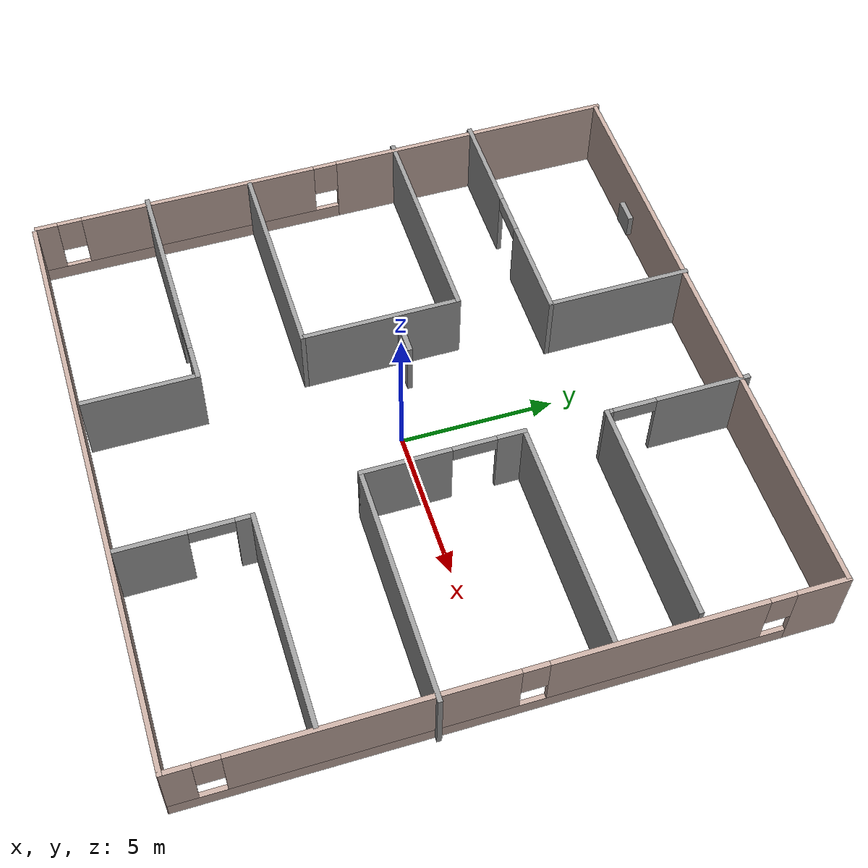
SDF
<?xml version='1.0'?>
<sdf version='1.7'>
  <model name='hosp'>
    <pose>-0.076232 0.37017 0 0 -0 0</pose>
    <link name='Door_1'>
      <collision name='Door_1_Collision'>
        <geometry>
          <box>
            <size>1.4 0.17 2</size>
          </box>
        </geometry>
        <pose>0 0 1 0 -0 0</pose>
      </collision>
      <visual name='Door_1_Visual'>
        <pose>0 0 1 0 -0 0</pose>
        <geometry>
          <box>
            <size>1.4 0.17 2</size>
          </box>
        </geometry>
        <material>
          <script>
            <uri>file://media/materials/scripts/gazebo.material</uri>
            <name>Gazebo/Grey</name>
          </script>
        </material>
      </visual>
      <pose>-2.54305 0.487142 0 0 -0 0</pose>
    </link>
    <link name='Wall_11'>
      <collision name='Wall_11_Collision'>
        <geometry>
          <box>
            <size>19.8 0.15 2.5</size>
          </box>
        </geometry>
        <pose>0 0 1.25 0 -0 0</pose>
      </collision>
      <visual name='Wall_11_Visual'>
        <pose>0 0 1.25 0 -0 0</pose>
        <geometry>
          <box>
            <size>19.8 0.15 2.5</size>
          </box>
        </geometry>
        <material>
          <script>
            <uri>file://media/materials/scripts/gazebo.material</uri>
            <name>Gazebo/Grey</name>
          </script>
          <ambient>0.760784 0.662745 0.627451 1</ambient>
        </material>
        <meta>
          <layer>0</layer>
        </meta>
      </visual>
      <pose>0.081232 -9.94295 0 0 -0 3.14159</pose>
    </link>
    <link name='Wall_13'>
      <pose>-9.90577 -0.026532 0 0 -0 -1.5708</pose>
      <visual name='Wall_13_Visual_0'>
        <pose>-5.13424 0 1.25 0 -0 0</pose>
        <geometry>
          <box>
            <size>9.53153 0.15 2.5</size>
          </box>
        </geometry>
        <material>
          <script>
            <uri>file://media/materials/scripts/gazebo.material</uri>
            <name>Gazebo/Grey</name>
          </script>
          <ambient>0.760784 0.662745 0.627451 1</ambient>
        </material>
        <meta>
          <layer>0</layer>
        </meta>
      </visual>
      <collision name='Wall_13_Collision_0'>
        <geometry>
          <box>
            <size>9.53153 0.15 2.5</size>
          </box>
        </geometry>
        <pose>-5.13424 0 1.25 0 -0 0</pose>
      </collision>
      <visual name='Wall_13_Visual_1'>
        <pose>4.76576 0 0.25 0 -0 0</pose>
        <geometry>
          <box>
            <size>10.2685 0.15 0.5</size>
          </box>
        </geometry>
        <material>
          <script>
            <uri>file://media/materials/scripts/gazebo.material</uri>
            <name>Gazebo/Grey</name>
          </script>
          <ambient>0.760784 0.662745 0.627451 1</ambient>
        </material>
        <meta>
          <layer>0</layer>
        </meta>
      </visual>
      <collision name='Wall_13_Collision_1'>
        <geometry>
          <box>
            <size>10.2685 0.15 0.5</size>
          </box>
        </geometry>
        <pose>4.76576 0 0.25 0 -0 0</pose>
      </collision>
      <visual name='Wall_13_Visual_2'>
        <pose>4.39198 0 1.5 0 -0 0</pose>
        <geometry>
          <box>
            <size>7.92091 0.15 2</size>
          </box>
        </geometry>
        <material>
          <script>
            <uri>file://media/materials/scripts/gazebo.material</uri>
            <name>Gazebo/Grey</name>
          </script>
          <ambient>0.760784 0.662745 0.627451 1</ambient>
        </material>
        <meta>
          <layer>0</layer>
        </meta>
      </visual>
      <collision name='Wall_13_Collision_2'>
        <geometry>
          <box>
            <size>7.92091 0.15 2</size>
          </box>
        </geometry>
        <pose>4.39198 0 1.5 0 -0 0</pose>
      </collision>
      <visual name='Wall_13_Visual_3'>
        <pose>9.52622 0 1.5 0 -0 0</pose>
        <geometry>
          <box>
            <size>0.747564 0.15 2</size>
          </box>
        </geometry>
        <material>
          <script>
            <uri>file://media/materials/scripts/gazebo.material</uri>
            <name>Gazebo/Grey</name>
          </script>
          <ambient>0.760784 0.662745 0.627451 1</ambient>
        </material>
        <meta>
          <layer>0</layer>
        </meta>
      </visual>
      <collision name='Wall_13_Collision_3'>
        <geometry>
          <box>
            <size>0.747564 0.15 2</size>
          </box>
        </geometry>
        <pose>9.52622 0 1.5 0 -0 0</pose>
      </collision>
      <visual name='Wall_13_Visual_4'>
        <pose>0.031529 0 1.9 0 -0 0</pose>
        <geometry>
          <box>
            <size>0.8 0.15 1.2</size>
          </box>
        </geometry>
        <material>
          <script>
            <uri>file://media/materials/scripts/gazebo.material</uri>
            <name>Gazebo/Grey</name>
          </script>
          <ambient>0.760784 0.662745 0.627451 1</ambient>
        </material>
        <meta>
          <layer>0</layer>
        </meta>
      </visual>
      <collision name='Wall_13_Collision_4'>
        <geometry>
          <box>
            <size>0.8 0.15 1.2</size>
          </box>
        </geometry>
        <pose>0.031529 0 1.9 0 -0 0</pose>
      </collision>
      <visual name='Wall_13_Visual_5'>
        <pose>8.75244 0 1.9 0 -0 0</pose>
        <geometry>
          <box>
            <size>0.8 0.15 1.2</size>
          </box>
        </geometry>
        <material>
          <script>
            <uri>file://media/materials/scripts/gazebo.material</uri>
            <name>Gazebo/Grey</name>
          </script>
          <ambient>0.760784 0.662745 0.627451 1</ambient>
        </material>
        <meta>
          <layer>0</layer>
        </meta>
      </visual>
      <collision name='Wall_13_Collision_5'>
        <geometry>
          <box>
            <size>0.8 0.15 1.2</size>
          </box>
        </geometry>
        <pose>8.75244 0 1.9 0 -0 0</pose>
      </collision>
    </link>
    <link name='Wall_17'>
      <pose>-6.00221 5.18021 0 0 -0 0</pose>
      <visual name='Wall_17_Visual_0'>
        <pose>-2.40324 0 1.25 0 -0 0</pose>
        <geometry>
          <box>
            <size>3.44353 0.15 2.5</size>
          </box>
        </geometry>
        <material>
          <script>
            <uri>file://media/materials/scripts/gazebo.material</uri>
            <name>Gazebo/Grey</name>
          </script>
          <ambient>1 1 1 1</ambient>
        </material>
        <meta>
          <layer>0</layer>
        </meta>
      </visual>
      <collision name='Wall_17_Collision_0'>
        <geometry>
          <box>
            <size>3.44353 0.15 2.5</size>
          </box>
        </geometry>
        <pose>-2.40324 0 1.25 0 -0 0</pose>
      </collision>
      <visual name='Wall_17_Visual_1'>
        <pose>2.42177 0 1.25 0 -0 0</pose>
        <geometry>
          <box>
            <size>3.40647 0.15 2.5</size>
          </box>
        </geometry>
        <material>
          <script>
            <uri>file://media/materials/scripts/gazebo.material</uri>
            <name>Gazebo/Grey</name>
          </script>
          <ambient>1 1 1 1</ambient>
        </material>
        <meta>
          <layer>0</layer>
        </meta>
      </visual>
      <collision name='Wall_17_Collision_1'>
        <geometry>
          <box>
            <size>3.40647 0.15 2.5</size>
          </box>
        </geometry>
        <pose>2.42177 0 1.25 0 -0 0</pose>
      </collision>
      <visual name='Wall_17_Visual_2'>
        <pose>0.018531 0 2.25 0 -0 0</pose>
        <geometry>
          <box>
            <size>1.4 0.15 0.5</size>
          </box>
        </geometry>
        <material>
          <script>
            <uri>file://media/materials/scripts/gazebo.material</uri>
            <name>Gazebo/Grey</name>
          </script>
          <ambient>1 1 1 1</ambient>
        </material>
        <meta>
          <layer>0</layer>
        </meta>
      </visual>
      <collision name='Wall_17_Collision_2'>
        <geometry>
          <box>
            <size>1.4 0.15 0.5</size>
          </box>
        </geometry>
        <pose>0.018531 0 2.25 0 -0 0</pose>
      </collision>
    </link>
    <link name='Wall_18'>
      <collision name='Wall_18_Collision'>
        <geometry>
          <box>
            <size>4.75 0.15 2.5</size>
          </box>
        </geometry>
        <pose>0 0 1.25 0 -0 0</pose>
      </collision>
      <visual name='Wall_18_Visual'>
        <pose>0 0 1.25 0 -0 0</pose>
        <geometry>
          <box>
            <size>4.75 0.15 2.5</size>
          </box>
        </geometry>
        <material>
          <script>
            <uri>file://media/materials/scripts/gazebo.material</uri>
            <name>Gazebo/Grey</name>
          </script>
          <ambient>1 1 1 1</ambient>
        </material>
        <meta>
          <layer>0</layer>
        </meta>
      </visual>
      <pose>-1.95222 7.48021 0 0 -0 1.5708</pose>
    </link>
    <link name='Wall_24'>
      <collision name='Wall_24_Collision'>
        <geometry>
          <box>
            <size>7.25 0.15 2.5</size>
          </box>
        </geometry>
        <pose>0 0 1.25 0 -0 0</pose>
      </collision>
      <visual name='Wall_24_Visual'>
        <pose>0 0 1.25 0 -0 0</pose>
        <geometry>
          <box>
            <size>7.25 0.15 2.5</size>
          </box>
        </geometry>
        <material>
          <script>
            <uri>file://media/materials/scripts/gazebo.material</uri>
            <name>Gazebo/Grey</name>
          </script>
          <ambient>1 1 1 1</ambient>
        </material>
        <meta>
          <layer>0</layer>
        </meta>
      </visual>
      <pose>6.08947 5.34295 0 0 -0 3.14159</pose>
    </link>
    <link name='Wall_25'>
      <pose>2.53947 7.64295 0 0 -0 1.5708</pose>
      <visual name='Wall_25_Visual_0'>
        <pose>-2.24256 0 1.25 0 -0 0</pose>
        <geometry>
          <box>
            <size>0.264872 0.15 2.5</size>
          </box>
        </geometry>
        <material>
          <script>
            <uri>file://media/materials/scripts/gazebo.material</uri>
            <name>Gazebo/Grey</name>
          </script>
          <ambient>1 1 1 1</ambient>
        </material>
        <meta>
          <layer>0</layer>
        </meta>
      </visual>
      <collision name='Wall_25_Collision_0'>
        <geometry>
          <box>
            <size>0.264872 0.15 2.5</size>
          </box>
        </geometry>
        <pose>-2.24256 0 1.25 0 -0 0</pose>
      </collision>
      <visual name='Wall_25_Visual_1'>
        <pose>0.832436 0 1.25 0 -0 0</pose>
        <geometry>
          <box>
            <size>3.08513 0.15 2.5</size>
          </box>
        </geometry>
        <material>
          <script>
            <uri>file://media/materials/scripts/gazebo.material</uri>
            <name>Gazebo/Grey</name>
          </script>
          <ambient>1 1 1 1</ambient>
        </material>
        <meta>
          <layer>0</layer>
        </meta>
      </visual>
      <collision name='Wall_25_Collision_1'>
        <geometry>
          <box>
            <size>3.08513 0.15 2.5</size>
          </box>
        </geometry>
        <pose>0.832436 0 1.25 0 -0 0</pose>
      </collision>
      <visual name='Wall_25_Visual_2'>
        <pose>-1.41013 0 2.25 0 -0 0</pose>
        <geometry>
          <box>
            <size>1.4 0.15 0.5</size>
          </box>
        </geometry>
        <material>
          <script>
            <uri>file://media/materials/scripts/gazebo.material</uri>
            <name>Gazebo/Grey</name>
          </script>
          <ambient>1 1 1 1</ambient>
        </material>
        <meta>
          <layer>0</layer>
        </meta>
      </visual>
      <collision name='Wall_25_Collision_2'>
        <geometry>
          <box>
            <size>1.4 0.15 0.5</size>
          </box>
        </geometry>
        <pose>-1.41013 0 2.25 0 -0 0</pose>
      </collision>
    </link>
    <link name='Wall_27'>
      <pose>-6.25221 -6.1303 0 0 -0 0</pose>
      <visual name='Wall_27_Visual_0'>
        <pose>-1.29431 0 1.25 0 -0 0</pose>
        <geometry>
          <box>
            <size>5.16139 0.15 2.5</size>
          </box>
        </geometry>
        <material>
          <script>
            <uri>file://media/materials/scripts/gazebo.material</uri>
            <name>Gazebo/Grey</name>
          </script>
          <ambient>1 1 1 1</ambient>
        </material>
        <meta>
          <layer>0</layer>
        </meta>
      </visual>
      <collision name='Wall_27_Collision_0'>
        <geometry>
          <box>
            <size>5.16139 0.15 2.5</size>
          </box>
        </geometry>
        <pose>-1.29431 0 1.25 0 -0 0</pose>
      </collision>
      <visual name='Wall_27_Visual_1'>
        <pose>3.28069 0 1.25 0 -0 0</pose>
        <geometry>
          <box>
            <size>1.18861 0.15 2.5</size>
          </box>
        </geometry>
        <material>
          <script>
            <uri>file://media/materials/scripts/gazebo.material</uri>
            <name>Gazebo/Grey</name>
          </script>
          <ambient>1 1 1 1</ambient>
        </material>
        <meta>
          <layer>0</layer>
        </meta>
      </visual>
      <collision name='Wall_27_Collision_1'>
        <geometry>
          <box>
            <size>1.18861 0.15 2.5</size>
          </box>
        </geometry>
        <pose>3.28069 0 1.25 0 -0 0</pose>
      </collision>
      <visual name='Wall_27_Visual_2'>
        <pose>1.98639 0 2.25 0 -0 0</pose>
        <geometry>
          <box>
            <size>1.4 0.15 0.5</size>
          </box>
        </geometry>
        <material>
          <script>
            <uri>file://media/materials/scripts/gazebo.material</uri>
            <name>Gazebo/Grey</name>
          </script>
          <ambient>1 1 1 1</ambient>
        </material>
        <meta>
          <layer>0</layer>
        </meta>
      </visual>
      <collision name='Wall_27_Collision_2'>
        <geometry>
          <box>
            <size>1.4 0.15 0.5</size>
          </box>
        </geometry>
        <pose>1.98639 0 2.25 0 -0 0</pose>
      </collision>
    </link>
    <link name='Wall_28'>
      <collision name='Wall_28_Collision'>
        <geometry>
          <box>
            <size>3.75 0.15 2.5</size>
          </box>
        </geometry>
        <pose>0 0 1.25 0 -0 0</pose>
      </collision>
      <visual name='Wall_28_Visual'>
        <pose>0 0 1.25 0 -0 0</pose>
        <geometry>
          <box>
            <size>3.75 0.15 2.5</size>
          </box>
        </geometry>
        <material>
          <script>
            <uri>file://media/materials/scripts/gazebo.material</uri>
            <name>Gazebo/Grey</name>
          </script>
          <ambient>1 1 1 1</ambient>
        </material>
        <meta>
          <layer>0</layer>
        </meta>
      </visual>
      <pose>-2.45221 -7.9303 0 0 -0 -1.5708</pose>
    </link>
    <link name='Wall_30'>
      <collision name='Wall_30_Collision'>
        <geometry>
          <box>
            <size>7 0.15 2.5</size>
          </box>
        </geometry>
        <pose>0 0 1.25 0 -0 0</pose>
      </collision>
      <visual name='Wall_30_Visual'>
        <pose>0 0 1.25 0 -0 0</pose>
        <geometry>
          <box>
            <size>7 0.15 2.5</size>
          </box>
        </geometry>
        <material>
          <script>
            <uri>file://media/materials/scripts/gazebo.material</uri>
            <name>Gazebo/Grey</name>
          </script>
          <ambient>1 1 1 1</ambient>
        </material>
        <meta>
          <layer>0</layer>
        </meta>
      </visual>
      <pose>6.37721 -5.72345 0 0 -0 3.14159</pose>
    </link>
    <link name='Wall_31'>
      <pose>2.95221 -7.77345 0 0 -0 -1.5708</pose>
      <visual name='Wall_31_Visual_0'>
        <pose>-1.82036 0 1.25 0 -0 0</pose>
        <geometry>
          <box>
            <size>0.609282 0.15 2.5</size>
          </box>
        </geometry>
        <material>
          <script>
            <uri>file://media/materials/scripts/gazebo.material</uri>
            <name>Gazebo/Grey</name>
          </script>
          <ambient>1 1 1 1</ambient>
        </material>
        <meta>
          <layer>0</layer>
        </meta>
      </visual>
      <collision name='Wall_31_Collision_0'>
        <geometry>
          <box>
            <size>0.609282 0.15 2.5</size>
          </box>
        </geometry>
        <pose>-1.82036 0 1.25 0 -0 0</pose>
      </collision>
      <visual name='Wall_31_Visual_1'>
        <pose>1.00464 0 1.25 0 -0 0</pose>
        <geometry>
          <box>
            <size>2.24072 0.15 2.5</size>
          </box>
        </geometry>
        <material>
          <script>
            <uri>file://media/materials/scripts/gazebo.material</uri>
            <name>Gazebo/Grey</name>
          </script>
          <ambient>1 1 1 1</ambient>
        </material>
        <meta>
          <layer>0</layer>
        </meta>
      </visual>
      <collision name='Wall_31_Collision_1'>
        <geometry>
          <box>
            <size>2.24072 0.15 2.5</size>
          </box>
        </geometry>
        <pose>1.00464 0 1.25 0 -0 0</pose>
      </collision>
      <visual name='Wall_31_Visual_2'>
        <pose>-0.815718 0 2.25 0 -0 0</pose>
        <geometry>
          <box>
            <size>1.4 0.15 0.5</size>
          </box>
        </geometry>
        <material>
          <script>
            <uri>file://media/materials/scripts/gazebo.material</uri>
            <name>Gazebo/Grey</name>
          </script>
          <ambient>1 1 1 1</ambient>
        </material>
        <meta>
          <layer>0</layer>
        </meta>
      </visual>
      <collision name='Wall_31_Collision_2'>
        <geometry>
          <box>
            <size>1.4 0.15 0.5</size>
          </box>
        </geometry>
        <pose>-0.815718 0 2.25 0 -0 0</pose>
      </collision>
    </link>
    <link name='Wall_33'>
      <collision name='Wall_33_Collision'>
        <geometry>
          <box>
            <size>7.25 0.15 2.5</size>
          </box>
        </geometry>
        <pose>0 0 1.25 0 -0 0</pose>
      </collision>
      <visual name='Wall_33_Visual'>
        <pose>0 0 1.25 0 -0 0</pose>
        <geometry>
          <box>
            <size>7.25 0.15 2.5</size>
          </box>
        </geometry>
        <material>
          <script>
            <uri>file://media/materials/scripts/gazebo.material</uri>
            <name>Gazebo/Grey</name>
          </script>
          <ambient>1 1 1 1</ambient>
        </material>
        <meta>
          <layer>0</layer>
        </meta>
      </visual>
      <pose>-6.50221 2.41361 0 0 -0 0</pose>
    </link>
    <link name='Wall_34'>
      <collision name='Wall_34_Collision'>
        <geometry>
          <box>
            <size>5.25 0.15 2.5</size>
          </box>
        </geometry>
        <pose>0 0 1.25 0 -0 0</pose>
      </collision>
      <visual name='Wall_34_Visual'>
        <pose>0 0 1.25 0 -0 0</pose>
        <geometry>
          <box>
            <size>5.25 0.15 2.5</size>
          </box>
        </geometry>
        <material>
          <script>
            <uri>file://media/materials/scripts/gazebo.material</uri>
            <name>Gazebo/Grey</name>
          </script>
          <ambient>1 1 1 1</ambient>
        </material>
        <meta>
          <layer>0</layer>
        </meta>
      </visual>
      <pose>-2.95221 -0.136387 0 0 -0 -1.5708</pose>
    </link>
    <link name='Wall_35'>
      <collision name='Wall_35_Collision'>
        <geometry>
          <box>
            <size>7 0.15 2.5</size>
          </box>
        </geometry>
        <pose>0 0 1.25 0 -0 0</pose>
      </collision>
      <visual name='Wall_35_Visual'>
        <pose>0 0 1.25 0 -0 0</pose>
        <geometry>
          <box>
            <size>7 0.15 2.5</size>
          </box>
        </geometry>
        <material>
          <script>
            <uri>file://media/materials/scripts/gazebo.material</uri>
            <name>Gazebo/Grey</name>
          </script>
          <ambient>1 1 1 1</ambient>
        </material>
        <meta>
          <layer>0</layer>
        </meta>
      </visual>
      <pose>-6.37721 -2.68639 0 0 -0 3.14159</pose>
    </link>
    <link name='Wall_37'>
      <collision name='Wall_37_Collision'>
        <geometry>
          <box>
            <size>7.5 0.15 2.5</size>
          </box>
        </geometry>
        <pose>0 0 1.25 0 -0 0</pose>
      </collision>
      <visual name='Wall_37_Visual'>
        <pose>0 0 1.25 0 -0 0</pose>
        <geometry>
          <box>
            <size>7.5 0.15 2.5</size>
          </box>
        </geometry>
        <material>
          <script>
            <uri>file://media/materials/scripts/gazebo.material</uri>
            <name>Gazebo/Grey</name>
          </script>
          <ambient>1 1 1 1</ambient>
        </material>
        <meta>
          <layer>0</layer>
        </meta>
      </visual>
      <pose>6.12721 2.73909 0 0 -0 3.14159</pose>
    </link>
    <link name='Wall_38'>
      <pose>2.45221 0.189095 0 0 -0 -1.5708</pose>
      <visual name='Wall_38_Visual_0'>
        <pose>-2.14993 0 1.25 0 -0 0</pose>
        <geometry>
          <box>
            <size>0.950146 0.15 2.5</size>
          </box>
        </geometry>
        <material>
          <script>
            <uri>file://media/materials/scripts/gazebo.material</uri>
            <name>Gazebo/Grey</name>
          </script>
          <ambient>1 1 1 1</ambient>
        </material>
        <meta>
          <layer>0</layer>
        </meta>
      </visual>
      <collision name='Wall_38_Collision_0'>
        <geometry>
          <box>
            <size>0.950146 0.15 2.5</size>
          </box>
        </geometry>
        <pose>-2.14993 0 1.25 0 -0 0</pose>
      </collision>
      <visual name='Wall_38_Visual_1'>
        <pose>1.17507 0 1.25 0 -0 0</pose>
        <geometry>
          <box>
            <size>2.89985 0.15 2.5</size>
          </box>
        </geometry>
        <material>
          <script>
            <uri>file://media/materials/scripts/gazebo.material</uri>
            <name>Gazebo/Grey</name>
          </script>
          <ambient>1 1 1 1</ambient>
        </material>
        <meta>
          <layer>0</layer>
        </meta>
      </visual>
      <collision name='Wall_38_Collision_1'>
        <geometry>
          <box>
            <size>2.89985 0.15 2.5</size>
          </box>
        </geometry>
        <pose>1.17507 0 1.25 0 -0 0</pose>
      </collision>
      <visual name='Wall_38_Visual_2'>
        <pose>-0.974854 0 2.25 0 -0 0</pose>
        <geometry>
          <box>
            <size>1.4 0.15 0.5</size>
          </box>
        </geometry>
        <material>
          <script>
            <uri>file://media/materials/scripts/gazebo.material</uri>
            <name>Gazebo/Grey</name>
          </script>
          <ambient>1 1 1 1</ambient>
        </material>
        <meta>
          <layer>0</layer>
        </meta>
      </visual>
      <collision name='Wall_38_Collision_2'>
        <geometry>
          <box>
            <size>1.4 0.15 0.5</size>
          </box>
        </geometry>
        <pose>-0.974854 0 2.25 0 -0 0</pose>
      </collision>
    </link>
    <link name='Wall_39'>
      <collision name='Wall_39_Collision'>
        <geometry>
          <box>
            <size>7.75 0.15 2.5</size>
          </box>
        </geometry>
        <pose>0 0 1.25 0 -0 0</pose>
      </collision>
      <visual name='Wall_39_Visual'>
        <pose>0 0 1.25 0 -0 0</pose>
        <geometry>
          <box>
            <size>7.75 0.15 2.5</size>
          </box>
        </geometry>
        <material>
          <script>
            <uri>file://media/materials/scripts/gazebo.material</uri>
            <name>Gazebo/Grey</name>
          </script>
          <ambient>1 1 1 1</ambient>
        </material>
        <meta>
          <layer>0</layer>
        </meta>
      </visual>
      <pose>6.25221 -2.3609 0 0 -0 0</pose>
    </link>
    <link name='Wall_5'>
      <collision name='Wall_5_Collision'>
        <geometry>
          <box>
            <size>19.8 0.15 2.5</size>
          </box>
        </geometry>
        <pose>0 0 1.25 0 -0 0</pose>
      </collision>
      <visual name='Wall_5_Visual'>
        <pose>0 0 1.25 0 -0 0</pose>
        <geometry>
          <box>
            <size>19.8 0.15 2.5</size>
          </box>
        </geometry>
        <material>
          <script>
            <uri>file://media/materials/scripts/gazebo.material</uri>
            <name>Gazebo/Grey</name>
          </script>
          <ambient>0.760784 0.662745 0.627451 1</ambient>
        </material>
        <meta>
          <layer>0</layer>
        </meta>
      </visual>
      <pose>0.010718 9.72764 0 0 -0 3.14159</pose>
    </link>
    <link name='Wall_9'>
      <pose>9.90669 -0.097571 0 0 -0 -1.5708</pose>
      <visual name='Wall_9_Visual_0'>
        <pose>-9.06206 0 1.25 0 -0 0</pose>
        <geometry>
          <box>
            <size>1.67588 0.15 2.5</size>
          </box>
        </geometry>
        <material>
          <script>
            <uri>file://media/materials/scripts/gazebo.material</uri>
            <name>Gazebo/Grey</name>
          </script>
          <ambient>0.760784 0.662745 0.627451 1</ambient>
        </material>
        <meta>
          <layer>0</layer>
        </meta>
      </visual>
      <collision name='Wall_9_Collision_0'>
        <geometry>
          <box>
            <size>1.67588 0.15 2.5</size>
          </box>
        </geometry>
        <pose>-9.06206 0 1.25 0 -0 0</pose>
      </collision>
      <visual name='Wall_9_Visual_1'>
        <pose>0.837938 0 0.25 0 -0 0</pose>
        <geometry>
          <box>
            <size>18.1241 0.15 0.5</size>
          </box>
        </geometry>
        <material>
          <script>
            <uri>file://media/materials/scripts/gazebo.material</uri>
            <name>Gazebo/Grey</name>
          </script>
          <ambient>0.760784 0.662745 0.627451 1</ambient>
        </material>
        <meta>
          <layer>0</layer>
        </meta>
      </visual>
      <collision name='Wall_9_Collision_1'>
        <geometry>
          <box>
            <size>18.1241 0.15 0.5</size>
          </box>
        </geometry>
        <pose>0.837938 0 0.25 0 -0 0</pose>
      </collision>
      <visual name='Wall_9_Visual_2'>
        <pose>-4.17258 0 1.5 0 -0 0</pose>
        <geometry>
          <box>
            <size>6.50309 0.15 2</size>
          </box>
        </geometry>
        <material>
          <script>
            <uri>file://media/materials/scripts/gazebo.material</uri>
            <name>Gazebo/Grey</name>
          </script>
          <ambient>0.760784 0.662745 0.627451 1</ambient>
        </material>
        <meta>
          <layer>0</layer>
        </meta>
      </visual>
      <collision name='Wall_9_Collision_2'>
        <geometry>
          <box>
            <size>6.50309 0.15 2</size>
          </box>
        </geometry>
        <pose>-4.17258 0 1.5 0 -0 0</pose>
      </collision>
      <visual name='Wall_9_Visual_3'>
        <pose>4.04005 0 1.5 0 -0 0</pose>
        <geometry>
          <box>
            <size>8.32218 0.15 2</size>
          </box>
        </geometry>
        <material>
          <script>
            <uri>file://media/materials/scripts/gazebo.material</uri>
            <name>Gazebo/Grey</name>
          </script>
          <ambient>0.760784 0.662745 0.627451 1</ambient>
        </material>
        <meta>
          <layer>0</layer>
        </meta>
      </visual>
      <collision name='Wall_9_Collision_3'>
        <geometry>
          <box>
            <size>8.32218 0.15 2</size>
          </box>
        </geometry>
        <pose>4.04005 0 1.5 0 -0 0</pose>
      </collision>
      <visual name='Wall_9_Visual_4'>
        <pose>9.45057 0 1.5 0 -0 0</pose>
        <geometry>
          <box>
            <size>0.898857 0.15 2</size>
          </box>
        </geometry>
        <material>
          <script>
            <uri>file://media/materials/scripts/gazebo.material</uri>
            <name>Gazebo/Grey</name>
          </script>
          <ambient>0.760784 0.662745 0.627451 1</ambient>
        </material>
        <meta>
          <layer>0</layer>
        </meta>
      </visual>
      <collision name='Wall_9_Collision_4'>
        <geometry>
          <box>
            <size>0.898857 0.15 2</size>
          </box>
        </geometry>
        <pose>9.45057 0 1.5 0 -0 0</pose>
      </collision>
      <visual name='Wall_9_Visual_5'>
        <pose>-7.82413 0 1.9 0 -0 0</pose>
        <geometry>
          <box>
            <size>0.8 0.15 1.2</size>
          </box>
        </geometry>
        <material>
          <script>
            <uri>file://media/materials/scripts/gazebo.material</uri>
            <name>Gazebo/Grey</name>
          </script>
          <ambient>0.760784 0.662745 0.627451 1</ambient>
        </material>
        <meta>
          <layer>0</layer>
        </meta>
      </visual>
      <collision name='Wall_9_Collision_5'>
        <geometry>
          <box>
            <size>0.8 0.15 1.2</size>
          </box>
        </geometry>
        <pose>-7.82413 0 1.9 0 -0 0</pose>
      </collision>
      <visual name='Wall_9_Visual_6'>
        <pose>-0.521033 0 1.9 0 -0 0</pose>
        <geometry>
          <box>
            <size>0.8 0.15 1.2</size>
          </box>
        </geometry>
        <material>
          <script>
            <uri>file://media/materials/scripts/gazebo.material</uri>
            <name>Gazebo/Grey</name>
          </script>
          <ambient>0.760784 0.662745 0.627451 1</ambient>
        </material>
        <meta>
          <layer>0</layer>
        </meta>
      </visual>
      <collision name='Wall_9_Collision_6'>
        <geometry>
          <box>
            <size>0.8 0.15 1.2</size>
          </box>
        </geometry>
        <pose>-0.521033 0 1.9 0 -0 0</pose>
      </collision>
      <visual name='Wall_9_Visual_7'>
        <pose>8.60114 0 1.9 0 -0 0</pose>
        <geometry>
          <box>
            <size>0.8 0.15 1.2</size>
          </box>
        </geometry>
        <material>
          <script>
            <uri>file://media/materials/scripts/gazebo.material</uri>
            <name>Gazebo/Grey</name>
          </script>
          <ambient>0.760784 0.662745 0.627451 1</ambient>
        </material>
        <meta>
          <layer>0</layer>
        </meta>
      </visual>
      <collision name='Wall_9_Collision_7'>
        <geometry>
          <box>
            <size>0.8 0.15 1.2</size>
          </box>
        </geometry>
        <pose>8.60114 0 1.9 0 -0 0</pose>
      </collision>
    </link>
    <link name='Window_0'>
      <collision name='Window_0_Collision'>
        <geometry>
          <box>
            <size>0.8 0.17 0.8</size>
          </box>
        </geometry>
        <pose>0 0 0.4 0 -0 0</pose>
      </collision>
      <visual name='Window_0_Visual'>
        <pose>0 0 0.4 0 -0 0</pose>
        <geometry>
          <box>
            <size>0.8 0.17 0.8</size>
          </box>
        </geometry>
        <material>
          <script>
            <uri>file://media/materials/scripts/gazebo.material</uri>
            <name>Gazebo/Grey</name>
          </script>
        </material>
      </visual>
      <pose>-5.96811 9.49214 0.5 0 -0 0</pose>
    </link>
    <static>1</static>
  </model>
</sdf>
